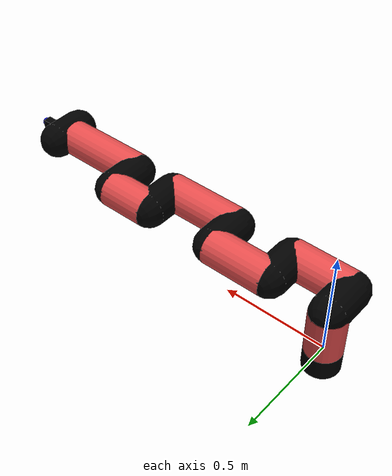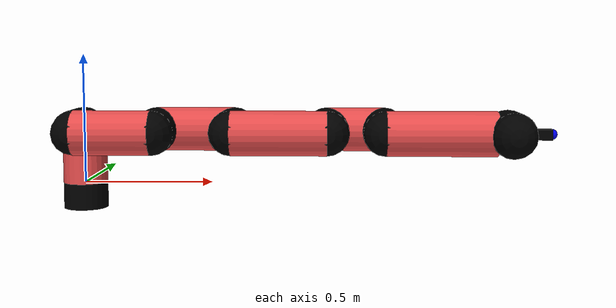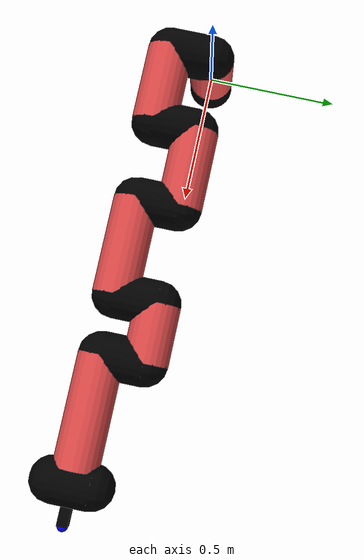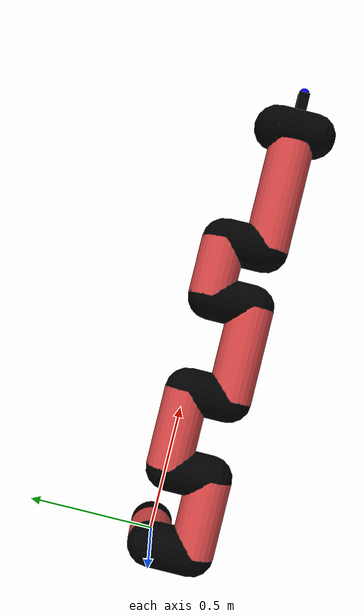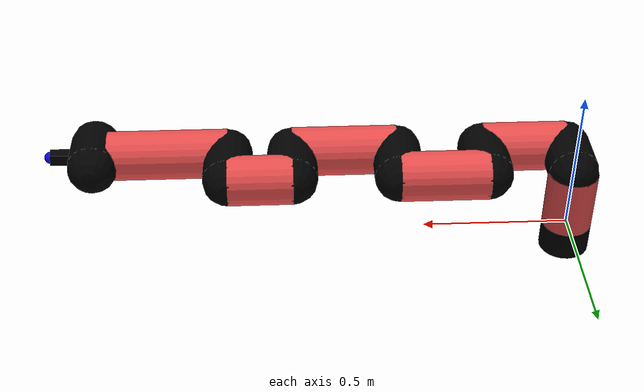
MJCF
<mujoco model="manipulator">
		<compiler angle="degree" coordinate="local" inertiafromgeom="auto" meshdir="meshes/"/>
		<option gravity="0 0 0" integrator="RK4" iterations="30" timestep="0.01"/>

		<default>
		<joint armature="1" limited="true" stiffness="10" damping="15" frictionloss="5.0"/>
		<geom conaffinity="1" condim="3" contype="1" friction=".5 .1 .1" margin="0.002"/>
		<motor ctrllimited="true"/>
		<position ctrllimited="true"/>
		</default>

		<asset>
		<texture builtin="gradient" height="100" rgb1="1.0 1.0 1.0" rgb2="1.0 1.0 1.0" type="skybox" width="100"/>
		<texture builtin="flat" height="32" name="arm_tex" rgb1="0.9 0.3 0.3" type="2d" width="32"/>
		<texture builtin="flat" height="32" name="gripper_tex" rgb1="0.0 0.0 0.0" type="cube" width="32"/>

		<material name="arm_mat" shininess="0.1" specular="0.1" texture="arm_tex"/>
		<material name="gripper_mat" shininess="1" specular="1" texture="gripper_tex"/>
		</asset>

		<worldbody>
		<light cutoff="45" diffuse=".8 .8 .8" dir="0 0.16 -1" directional="false" name="light" pos="0 -2.0 8.0" specular="0.3 0.3 0.3"/>

		<body name="base_link" pos="0 0 -0.1">
		<geom fromto="0 0 0 0 0 0.1" material="arm_mat" name="base_link" rgba="0.0 0.0 0.0 1" size="0.085" type="cylinder"/>
		</body>

		<body name="l1" pos="0 0 0">
<geom fromto="0 0 0 0 0 0.21" material="arm_mat" name="l1" rgba="0.9 0.3 0.3 1" size="0.085" type="cylinder"/>
<geom fromto="0 0 0.21 0 -0.16 0.21" material="arm_mat" name="l1_ex" rgba="0.0 0.0 0.0 1" size="0.085" type="capsule"/>
<joint axis="0 0 1" name="j1" pos="0 0 0" range="-90 90" damping="21.23" frictionloss="13.86"/>

<body name="l2" pos="0 -0.16 0.21">
<geom fromto="0 0 0 0.29 0 0" material="arm_mat" name="l2" rgba="0.9 0.3 0.3 1" size="0.085" type="cylinder"/>
<geom fromto="0.29 0 0 0.29 0.16 0" material="arm_mat" name="l2_ex" rgba="0.0 0.0 0.0 1" size="0.085" type="capsule"/>
<joint axis="0.0 1.0 0.0" name="j2" pos="0 0 0" range="-90 60" damping="39.92" frictionloss="10.23"/>

<body name="l3" pos="0.29 0.16 0">
<geom fromto="0 0 0 0.3 0 0" material="arm_mat" name="l3" rgba="0.9 0.3 0.3 1" size="0.085" type="cylinder"/>
<geom fromto="0.3 0 0 0.3 -0.16 0" material="arm_mat" name="l3_ex" rgba="0.0 0.0 0.0 1" size="0.085" type="capsule"/>
<joint axis="0.0 1.0 0.0" name="j3" pos="0 0 0" range="-30 60" damping="37.1" frictionloss="6.69"/>

<body name="l4" pos="0.3 -0.16 0">
<geom fromto="0 0 0 0.36 0 0" material="arm_mat" name="l4" rgba="0.9 0.3 0.3 1" size="0.085" type="cylinder"/>
<geom fromto="0.36 0 0 0.36 0.16 0" material="arm_mat" name="l4_ex" rgba="0.0 0.0 0.0 1" size="0.085" type="capsule"/>
<joint axis="0.0 1.0 0.0" name="j4" pos="0 0 0" range="-30 60" damping="39.45" frictionloss="7.7"/>

<body name="l5" pos="0.36 0.16 0">
<geom fromto="0 0 0 0.22 0 0" material="arm_mat" name="l5" rgba="0.9 0.3 0.3 1" size="0.085" type="cylinder"/>
<geom fromto="0.22 0 0 0.22 -0.16 0" material="arm_mat" name="l5_ex" rgba="0.0 0.0 0.0 1" size="0.085" type="capsule"/>
<joint axis="0.0 1.0 0.0" name="j5" pos="0 0 0" range="-30 60" damping="31.83" frictionloss="6.72"/>

<body name="l6" pos="0.22 -0.16 0">
<geom fromto="0 0 0 0.41 0 0" material="arm_mat" name="l6" rgba="0.9 0.3 0.3 1" size="0.085" type="cylinder"/>
<joint axis="0.0 1.0 0.0" name="j6" pos="0 0 0" range="-30 60" damping="24.89" frictionloss="7.22"/>

<body name="gripper" pos="0.41 0 0">
<geom fromto="0.05 -0.07 0 0.05 0.07 0" material="gripper_mat" name="gripper" rgba="0.0 0.0 0.0 1" size="0.085" type="capsule"/><joint axis="1 0 0" name="j7" pos="0 0 0" range="-90 90" damping="15" frictionloss="5.0"/><body name="finger" pos="0.1 0 0">
<geom fromto="0 0.0 0 0.1 0.0 0" material="gripper_mat" name="finger" rgba="0.0 0.0 0.0 1" size="0.020 0.06 0.06" type="box"/>
</body>
<site name="current" pos="0.2 0. 0.0" rgba="0. 0. 1.0 1" size="0.02" type="sphere"/>
</body>
</body>
</body>
</body>
</body>
</body>
</body>
</worldbody>
<actuator>
<motor ctrllimited="true" ctrlrange="-1.0 1.0" joint="j1" gear="61.53"/>
<motor ctrllimited="true" ctrlrange="-1.0 1.0" joint="j2" gear="69.46"/>
<motor ctrllimited="true" ctrlrange="-1.0 1.0" joint="j3" gear="92.25"/>
<motor ctrllimited="true" ctrlrange="-1.0 1.0" joint="j4" gear="88.77"/>
<motor ctrllimited="true" ctrlrange="-1.0 1.0" joint="j5" gear="103.18"/>
<motor ctrllimited="true" ctrlrange="-1.0 1.0" joint="j6" gear="117.1"/>
<motor ctrllimited="true" ctrlrange="-1.0 1.0" joint="j7" gear="80"/>
</actuator>
</mujoco>
